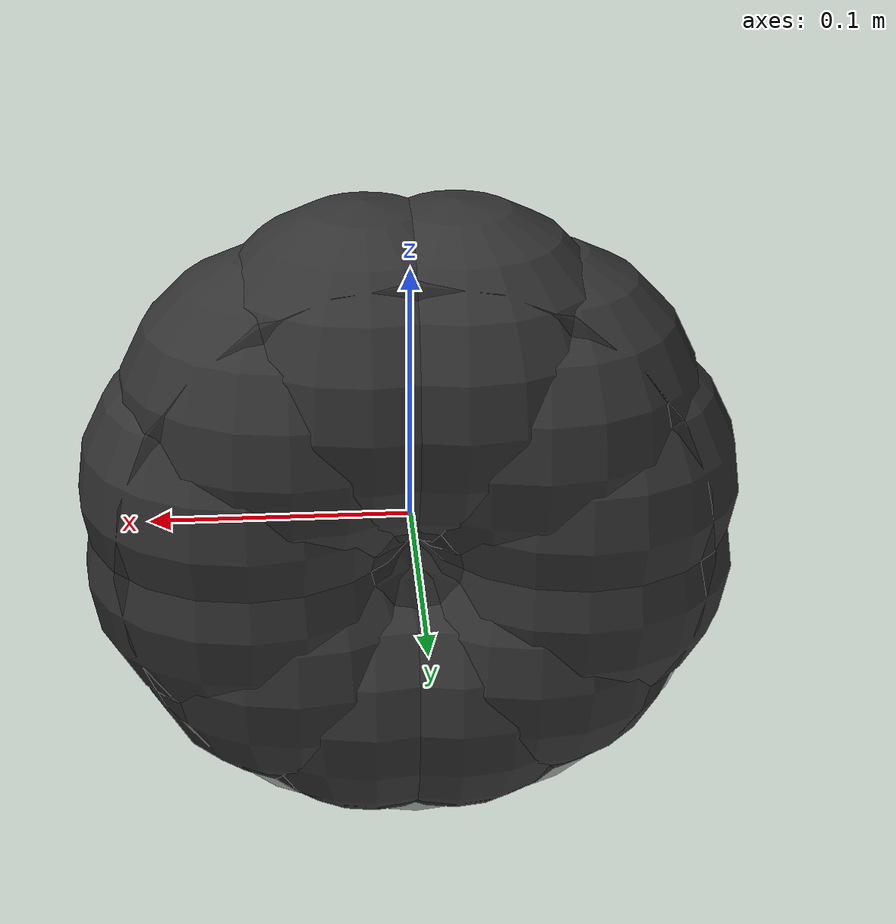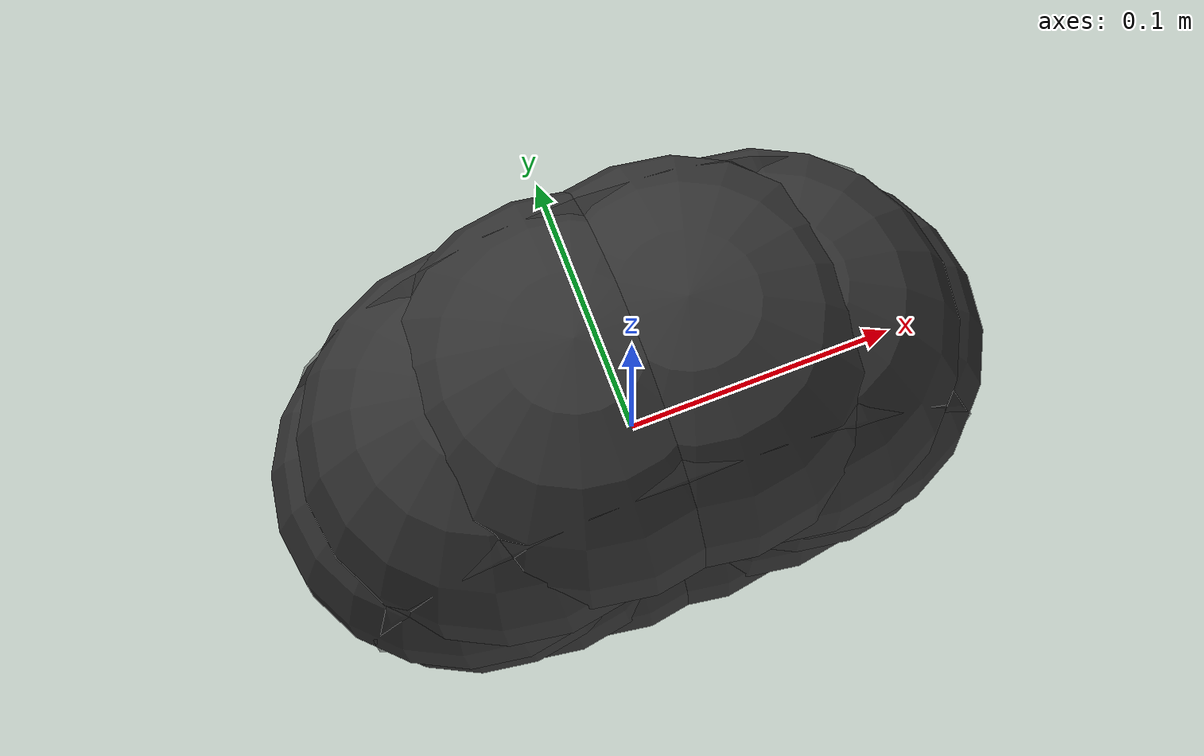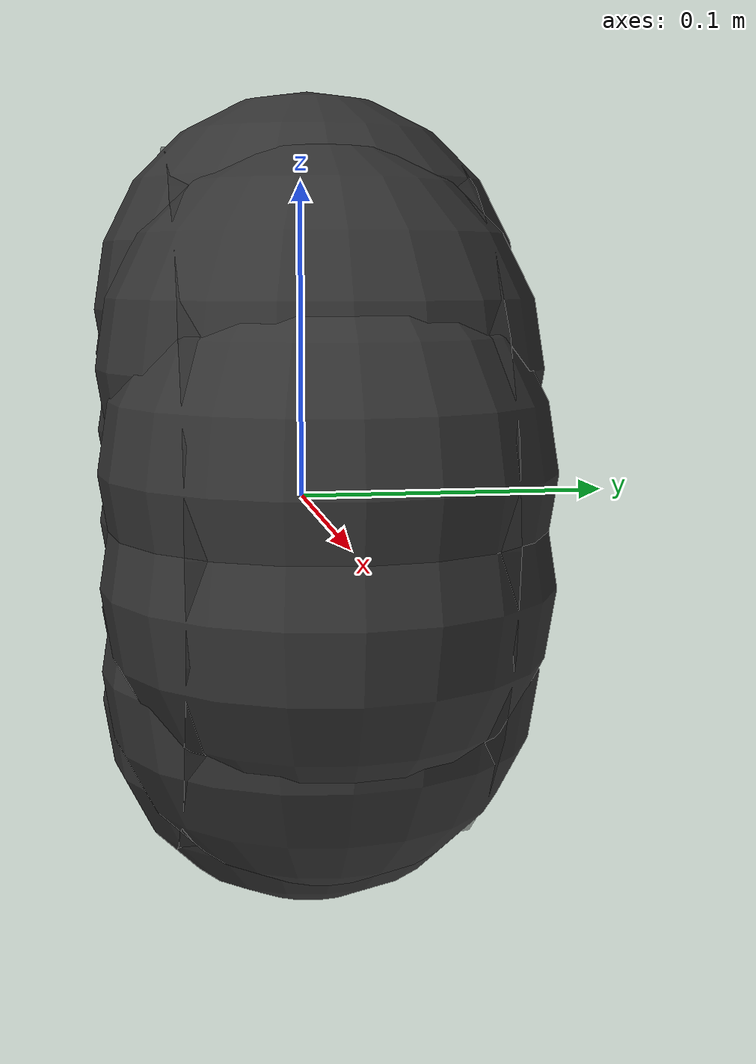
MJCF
<?xml version='1.0' encoding='utf-8'?>
<mujoco>
    <compiler angle="radian" />
    <option integrator="implicitfast" timestep="0.002" />
    <default>
        <default class="omniwheel">
            <default class="omniplate" />
            <default class="omniroller">
                <geom condim="4" contype="1" conaffinity="0" friction="0.3 0.05 0.005" />
            </default>
        </default>
    </default>
    <worldbody>
        <body name="R_omni_plate" pos="0 0 0">
            <inertial pos="0 0 0" quat="0.707107 0 0 0.707107" mass="2.2423" diaginertia="0.0524193 0.0303095 0.0303095" />
            <joint name="R_omni_plate" pos="0 0 0" axis="0 1 0" />
            <geom size="0.11 0.0435" quat="0.707107 0.707107 0 0" type="cylinder" rgba="0.2 0.2 0.2 0.5" contype="0" conaffinity="0" />
            <body name="R_omni_roller0" pos="0.06064582562299426 0.0 0.016249999999999997">
                <inertial pos="0 0 0" quat="0.707107 0 0 0.707107" mass="0.1" diaginertia="0.03 0.03 0.03" />
                <joint name="R_omni_roller0" pos="0 0 0" axis="0.0 0.0 -1.0" />
                <geom type="sphere" size="0.065" class="omniroller" rgba="0.2 0.2 0.2 1" />
            </body>
            <body name="R_omni_roller1" pos="0.04439582562299427 0.0 0.04439582562299425">
                <inertial pos="0 0 0" quat="0.707107 0 0 0.707107" mass="0.1" diaginertia="0.03 0.03 0.03" />
                <joint name="R_omni_roller1" pos="0 0 0" axis="0.49999999999999994 0.0 -0.8660254037844387" />
                <geom type="sphere" size="0.065" class="omniroller" rgba="0.2 0.2 0.2 1" />
            </body>
            <body name="R_omni_roller2" pos="0.016250000000000007 0.0 0.060645825622994254">
                <inertial pos="0 0 0" quat="0.707107 0 0 0.707107" mass="0.1" diaginertia="0.03 0.03 0.03" />
                <joint name="R_omni_roller2" pos="0 0 0" axis="0.8660254037844386 0.0 -0.5000000000000001" />
                <geom type="sphere" size="0.065" class="omniroller" rgba="0.2 0.2 0.2 1" />
            </body>
            <body name="R_omni_roller3" pos="-0.01624999999999999 0.0 0.06064582562299426">
                <inertial pos="0 0 0" quat="0.707107 0 0 0.707107" mass="0.1" diaginertia="0.03 0.03 0.03" />
                <joint name="R_omni_roller3" pos="0 0 0" axis="1.0 0.0 -6.123233995736766e-17" />
                <geom type="sphere" size="0.065" class="omniroller" rgba="0.2 0.2 0.2 1" />
            </body>
            <body name="R_omni_roller4" pos="-0.044395825622994246 0.0 0.04439582562299427">
                <inertial pos="0 0 0" quat="0.707107 0 0 0.707107" mass="0.1" diaginertia="0.03 0.03 0.03" />
                <joint name="R_omni_roller4" pos="0 0 0" axis="0.8660254037844387 0.0 0.49999999999999983" />
                <geom type="sphere" size="0.065" class="omniroller" rgba="0.2 0.2 0.2 1" />
            </body>
            <body name="R_omni_roller5" pos="-0.060645825622994254 0.0 0.016250000000000014">
                <inertial pos="0 0 0" quat="0.707107 0 0 0.707107" mass="0.1" diaginertia="0.03 0.03 0.03" />
                <joint name="R_omni_roller5" pos="0 0 0" axis="0.5000000000000003 0.0 0.8660254037844385" />
                <geom type="sphere" size="0.065" class="omniroller" rgba="0.2 0.2 0.2 1" />
            </body>
            <body name="R_omni_roller6" pos="-0.06064582562299427 0.0 -0.01624999999999999">
                <inertial pos="0 0 0" quat="0.707107 0 0 0.707107" mass="0.1" diaginertia="0.03 0.03 0.03" />
                <joint name="R_omni_roller6" pos="0 0 0" axis="1.2246467991473532e-16 0.0 1.0" />
                <geom type="sphere" size="0.065" class="omniroller" rgba="0.2 0.2 0.2 1" />
            </body>
            <body name="R_omni_roller7" pos="-0.04439582562299428 0.0 -0.04439582562299424">
                <inertial pos="0 0 0" quat="0.707107 0 0 0.707107" mass="0.1" diaginertia="0.03 0.03 0.03" />
                <joint name="R_omni_roller7" pos="0 0 0" axis="-0.4999999999999998 0.0 0.8660254037844388" />
                <geom type="sphere" size="0.065" class="omniroller" rgba="0.2 0.2 0.2 1" />
            </body>
            <body name="R_omni_roller8" pos="-0.01625000000000002 0.0 -0.060645825622994254">
                <inertial pos="0 0 0" quat="0.707107 0 0 0.707107" mass="0.1" diaginertia="0.03 0.03 0.03" />
                <joint name="R_omni_roller8" pos="0 0 0" axis="-0.8660254037844384 0.0 0.5000000000000004" />
                <geom type="sphere" size="0.065" class="omniroller" rgba="0.2 0.2 0.2 1" />
            </body>
            <body name="R_omni_roller9" pos="0.016249999999999973 0.0 -0.06064582562299427">
                <inertial pos="0 0 0" quat="0.707107 0 0 0.707107" mass="0.1" diaginertia="0.03 0.03 0.03" />
                <joint name="R_omni_roller9" pos="0 0 0" axis="-1.0 0.0 1.8369701987210297e-16" />
                <geom type="sphere" size="0.065" class="omniroller" rgba="0.2 0.2 0.2 1" />
            </body>
            <body name="R_omni_roller10" pos="0.044395825622994226 0.0 -0.04439582562299428">
                <inertial pos="0 0 0" quat="0.707107 0 0 0.707107" mass="0.1" diaginertia="0.03 0.03 0.03" />
                <joint name="R_omni_roller10" pos="0 0 0" axis="-0.866025403784439 0.0 -0.49999999999999933" />
                <geom type="sphere" size="0.065" class="omniroller" rgba="0.2 0.2 0.2 1" />
            </body>
            <body name="R_omni_roller11" pos="0.060645825622994254 0.0 -0.01625000000000002">
                <inertial pos="0 0 0" quat="0.707107 0 0 0.707107" mass="0.1" diaginertia="0.03 0.03 0.03" />
                <joint name="R_omni_roller11" pos="0 0 0" axis="-0.5000000000000004 0.0 -0.8660254037844384" />
                <geom type="sphere" size="0.065" class="omniroller" rgba="0.2 0.2 0.2 1" />
            </body>
        </body>
    </worldbody>
</mujoco>
